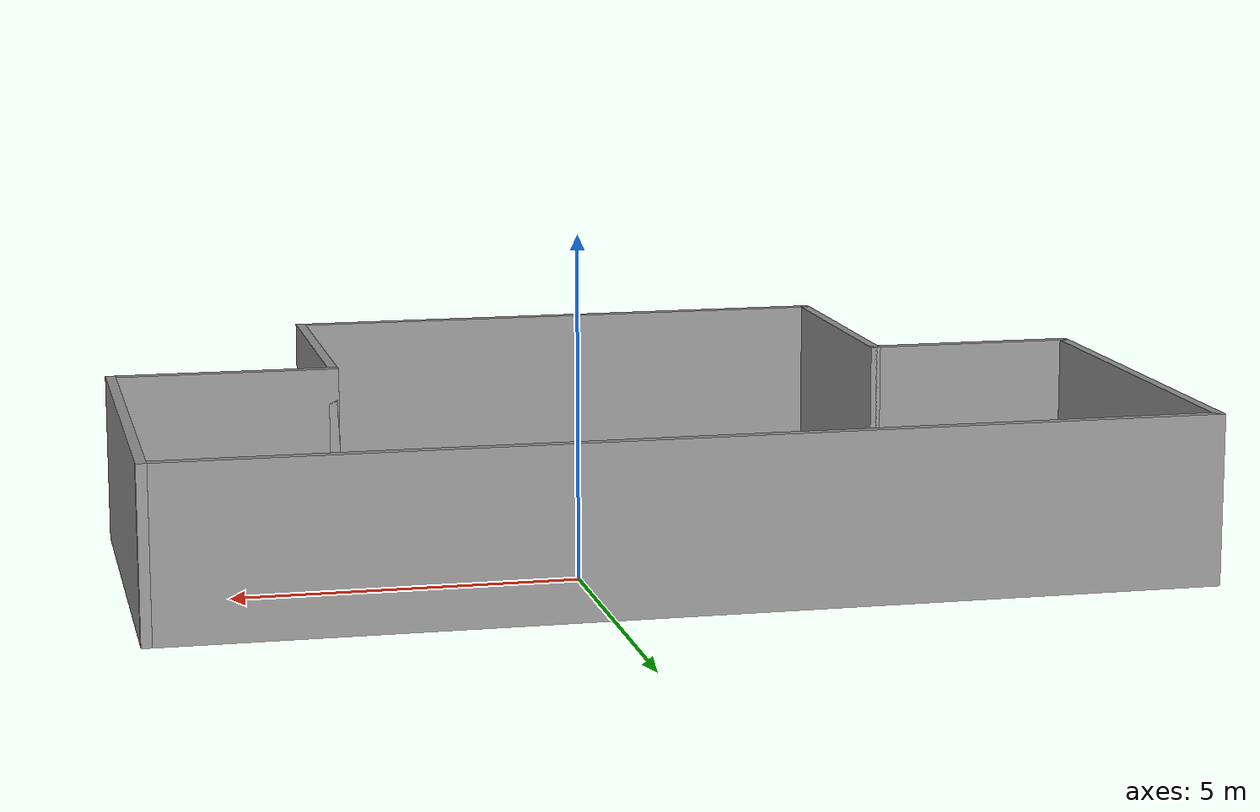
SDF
<?xml version='1.0'?>
<sdf version='1.6'>
  <model name='officewall'>
    <pose frame=''>-1.22276 -2.93743 0 0 -0 0</pose>
    <link name='Wall_12'>
      <collision name='Wall_12_Collision'>
        <geometry>
          <box>
            <size>4.25 0.15 2.5</size>
          </box>
        </geometry>
        <pose frame=''>0 0 1.25 0 -0 0</pose>
      </collision>
      <visual name='Wall_12_Visual'>
        <pose frame=''>0 0 1.25 0 -0 0</pose>
        <geometry>
          <box>
            <size>4.25 0.15 2.5</size>
          </box>
        </geometry>
        <material>
          <script>
            <uri>file://media/materials/scripts/gazebo.material</uri>
            <name>Gazebo/Grey</name>
          </script>
          <ambient>1 1 1 1</ambient>
        </material>
        <meta>
          <layer>0</layer>
        </meta>
      </visual>
      <pose frame=''>-4.4 -3.175 0 0 0 -1.5708</pose>
    </link>
    <link name='Wall_13'>
      <collision name='Wall_13_Collision'>
        <geometry>
          <box>
            <size>8.75 0.15 2.5</size>
          </box>
        </geometry>
        <pose frame=''>0 0 1.25 0 -0 0</pose>
      </collision>
      <visual name='Wall_13_Visual'>
        <pose frame=''>0 0 1.25 0 -0 0</pose>
        <geometry>
          <box>
            <size>8.75 0.15 2.5</size>
          </box>
        </geometry>
        <material>
          <script>
            <uri>file://media/materials/scripts/gazebo.material</uri>
            <name>Gazebo/Grey</name>
          </script>
          <ambient>1 1 1 1</ambient>
        </material>
        <meta>
          <layer>0</layer>
        </meta>
      </visual>
      <pose frame=''>-0.1 -5.225 0 0 -0 0</pose>
    </link>
    <link name='Wall_16'>
      <collision name='Wall_16_Collision'>
        <geometry>
          <box>
            <size>4.25 0.15 2.5</size>
          </box>
        </geometry>
        <pose frame=''>0 0 1.25 0 -0 0</pose>
      </collision>
      <visual name='Wall_16_Visual'>
        <pose frame=''>0 0 1.25 0 -0 0</pose>
        <geometry>
          <box>
            <size>4.25 0.15 2.5</size>
          </box>
        </geometry>
        <material>
          <script>
            <uri>file://media/materials/scripts/gazebo.material</uri>
            <name>Gazebo/Grey</name>
          </script>
          <ambient>1 1 1 1</ambient>
        </material>
        <meta>
          <layer>0</layer>
        </meta>
      </visual>
      <pose frame=''>4.2 -3.175 0 0 -0 1.5708</pose>
    </link>
    <link name='Wall_17'>
      <collision name='Wall_17_Collision'>
        <geometry>
          <box>
            <size>3.5 0.15 2.5</size>
          </box>
        </geometry>
        <pose frame=''>0 0 1.25 0 -0 0</pose>
      </collision>
      <visual name='Wall_17_Visual'>
        <pose frame=''>0 0 1.25 0 -0 0</pose>
        <geometry>
          <box>
            <size>3.5 0.15 2.5</size>
          </box>
        </geometry>
        <material>
          <script>
            <uri>file://media/materials/scripts/gazebo.material</uri>
            <name>Gazebo/Grey</name>
          </script>
          <ambient>1 1 1 1</ambient>
        </material>
        <meta>
          <layer>0</layer>
        </meta>
      </visual>
      <pose frame=''>5.875 -1.125 0 0 -0 0</pose>
    </link>
    <link name='Wall_19'>
      <collision name='Wall_19_Collision'>
        <geometry>
          <box>
            <size>6.5 0.15 2.5</size>
          </box>
        </geometry>
        <pose frame=''>0 0 1.25 0 -0 0</pose>
      </collision>
      <visual name='Wall_19_Visual'>
        <pose frame=''>0 0 1.25 0 -0 0</pose>
        <geometry>
          <box>
            <size>6.5 0.15 2.5</size>
          </box>
        </geometry>
        <material>
          <script>
            <uri>file://media/materials/scripts/gazebo.material</uri>
            <name>Gazebo/Grey</name>
          </script>
          <ambient>1 1 1 1</ambient>
        </material>
        <meta>
          <layer>0</layer>
        </meta>
      </visual>
      <pose frame=''>7.55 2.05 0 0 -0 1.5708</pose>
    </link>
    <link name='Wall_20'>
      <collision name='Wall_20_Collision'>
        <geometry>
          <box>
            <size>15.25 0.15 2.5</size>
          </box>
        </geometry>
        <pose frame=''>0 0 1.25 0 -0 0</pose>
      </collision>
      <visual name='Wall_20_Visual'>
        <pose frame=''>0 0 1.25 0 -0 0</pose>
        <geometry>
          <box>
            <size>15.25 0.15 2.5</size>
          </box>
        </geometry>
        <material>
          <script>
            <uri>file://media/materials/scripts/gazebo.material</uri>
            <name>Gazebo/Grey</name>
          </script>
          <ambient>1 1 1 1</ambient>
        </material>
        <meta>
          <layer>0</layer>
        </meta>
      </visual>
      <pose frame=''>0 5.225 0 0 -0 3.14159</pose>
    </link>
    <link name='Wall_22'>
      <collision name='Wall_22_Collision'>
        <geometry>
          <box>
            <size>6.5 0.15 2.5</size>
          </box>
        </geometry>
        <pose frame=''>0 0 1.25 0 -0 0</pose>
      </collision>
      <visual name='Wall_22_Visual'>
        <pose frame=''>0 0 1.25 0 -0 0</pose>
        <geometry>
          <box>
            <size>6.5 0.15 2.5</size>
          </box>
        </geometry>
        <material>
          <script>
            <uri>file://media/materials/scripts/gazebo.material</uri>
            <name>Gazebo/Grey</name>
          </script>
          <ambient>1 1 1 1</ambient>
        </material>
        <meta>
          <layer>0</layer>
        </meta>
      </visual>
      <pose frame=''>-7.55 2.05 0 0 0 -1.5708</pose>
    </link>
    <link name='Wall_23'>
      <collision name='Wall_23_Collision'>
        <geometry>
          <box>
            <size>3.3 0.15 2.5</size>
          </box>
        </geometry>
        <pose frame=''>0 0 1.25 0 -0 0</pose>
      </collision>
      <visual name='Wall_23_Visual'>
        <pose frame=''>0 0 1.25 0 -0 0</pose>
        <geometry>
          <box>
            <size>3.3 0.15 2.5</size>
          </box>
        </geometry>
        <material>
          <script>
            <uri>file://media/materials/scripts/gazebo.material</uri>
            <name>Gazebo/Grey</name>
          </script>
          <ambient>1 1 1 1</ambient>
        </material>
        <meta>
          <layer>0</layer>
        </meta>
      </visual>
      <pose frame=''>-5.975 -1.125 0 0 -0 0</pose>
    </link>
    <static>1</static>
  </model>
</sdf>
